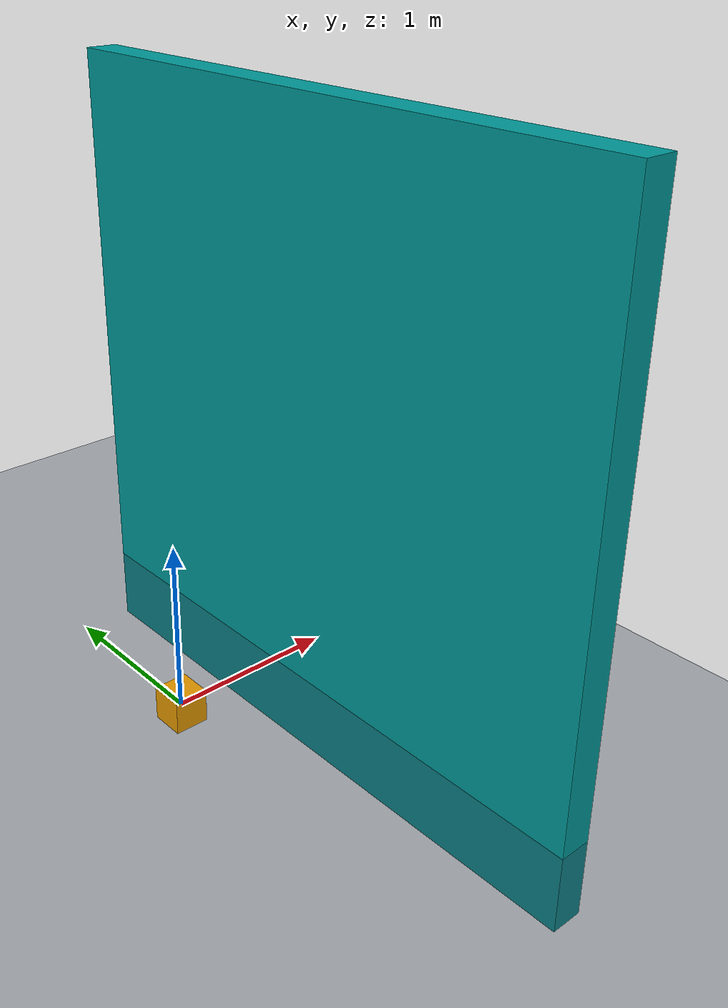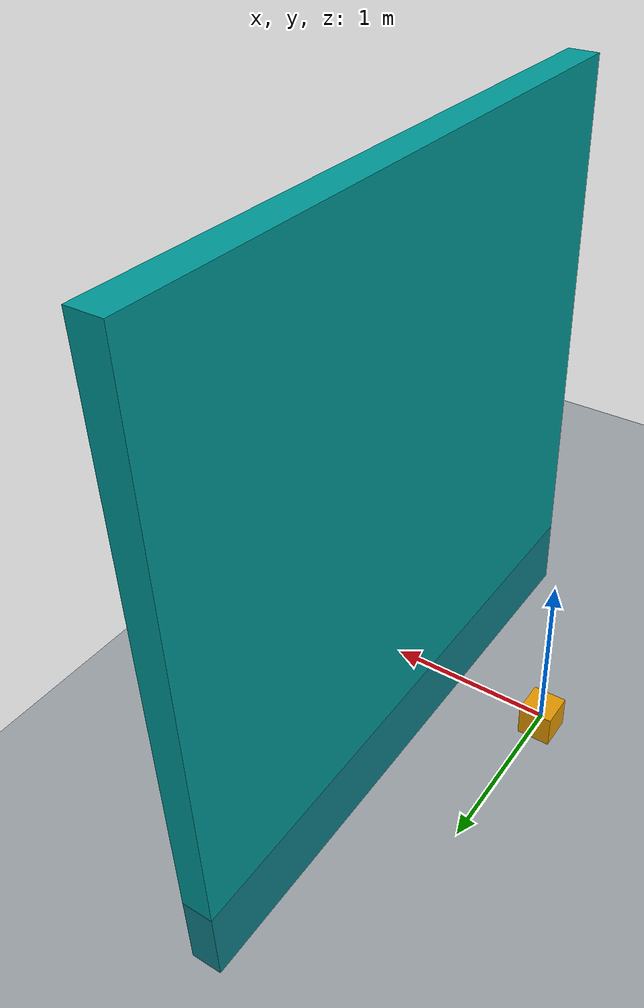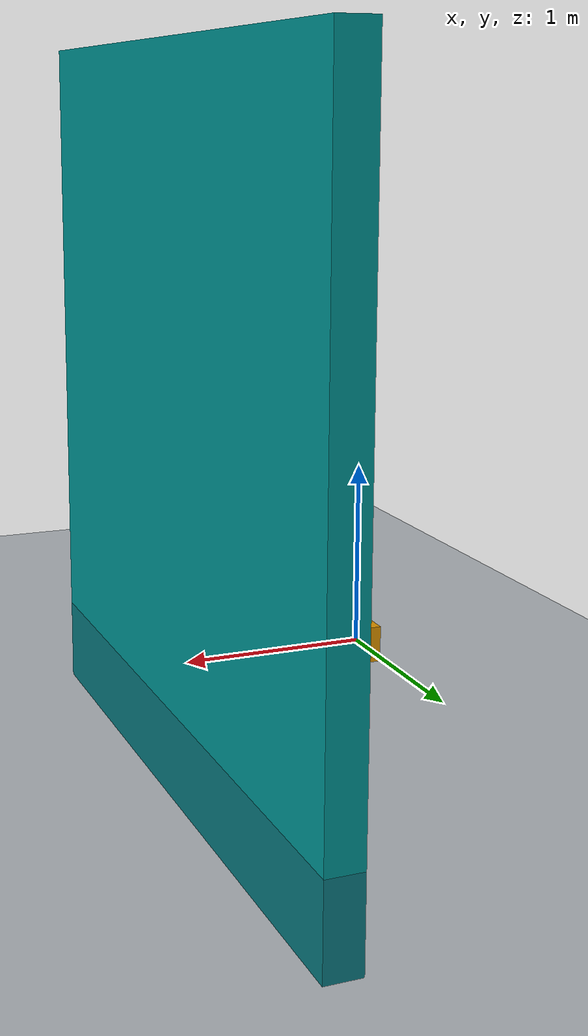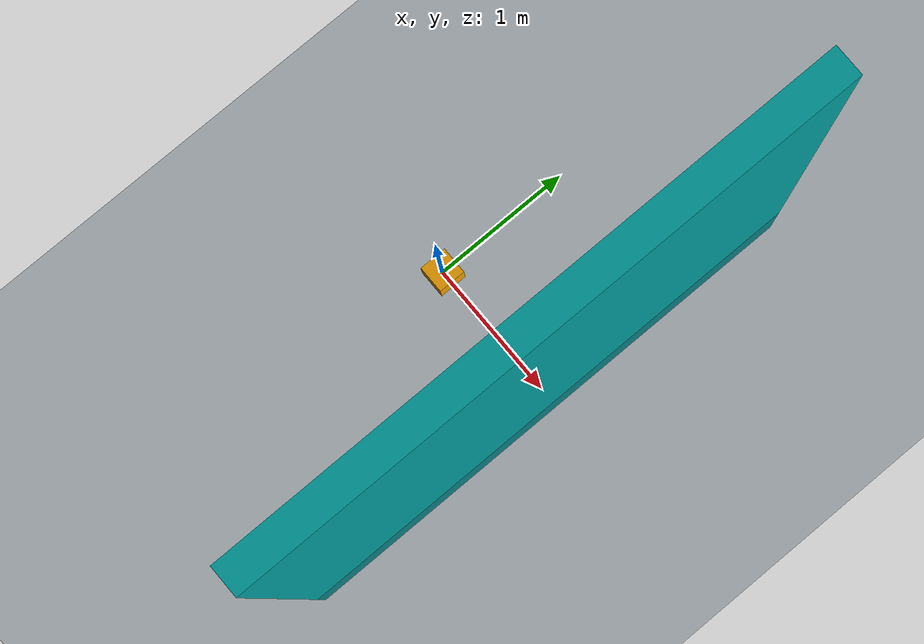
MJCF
<mujoco>

	<asset>
        <texture type="skybox" builtin="gradient" rgb1="0.3 0.5 0.7" rgb2="0 0 0" width="512" height="512"/>

        <texture name="texplane" type="2d" builtin="checker" rgb1=".2 .3 .4" rgb2=".1 0.15 0.2" width="512" height="512" mark="cross" markrgb=".8 .8 .8"/>

        <texture name="texgeom" type="cube" builtin="flat" mark="cross" width="127" height="1278"
            rgb1="0.8 0.6 0.4" rgb2="0.8 0.6 0.4" markrgb="1 1 1" random="0.01"/>

        <material name="matplane" reflectance="0.3" texture="texplane" texrepeat="1 1" texuniform="true"/>

        <material name="matgeom" texture="texgeom" texuniform="true" rgba="0.8 0.6 .4 1"/>
    </asset>

	<worldbody>
		<light diffuse=".5 .5 .5" pos="-20 0 1" dir="1 0 -0.1"/>
		<light diffuse=".5 .5 .5" pos="0 0 20" dir="0 0 -1"/>

		<geom name="floor" pos="0 0 -0.25" size="0 0 .25" type="plane" material="matplane" condim="3"/>
		<body name="wall" pos="1 0 1.25" euler="0 0 0 ">
			<geom type="box" size=".1 2 2" rgba="0 0.6 0.6 1"/>
		</body>

		<body name="car" pos="0 0 0">
			<geom type="box" size="0.1 0.1 0.1" rgba=".9 0.6 0 1"/>
			<joint name="car_acceleration" type="slide" pos="0 0 0" axis="1 0 0"/>
		</body>

	</worldbody>

	 <actuator>
        <motor name="car_acceleration" gear="100" joint="car_acceleration" />
    </actuator>
</mujoco>
